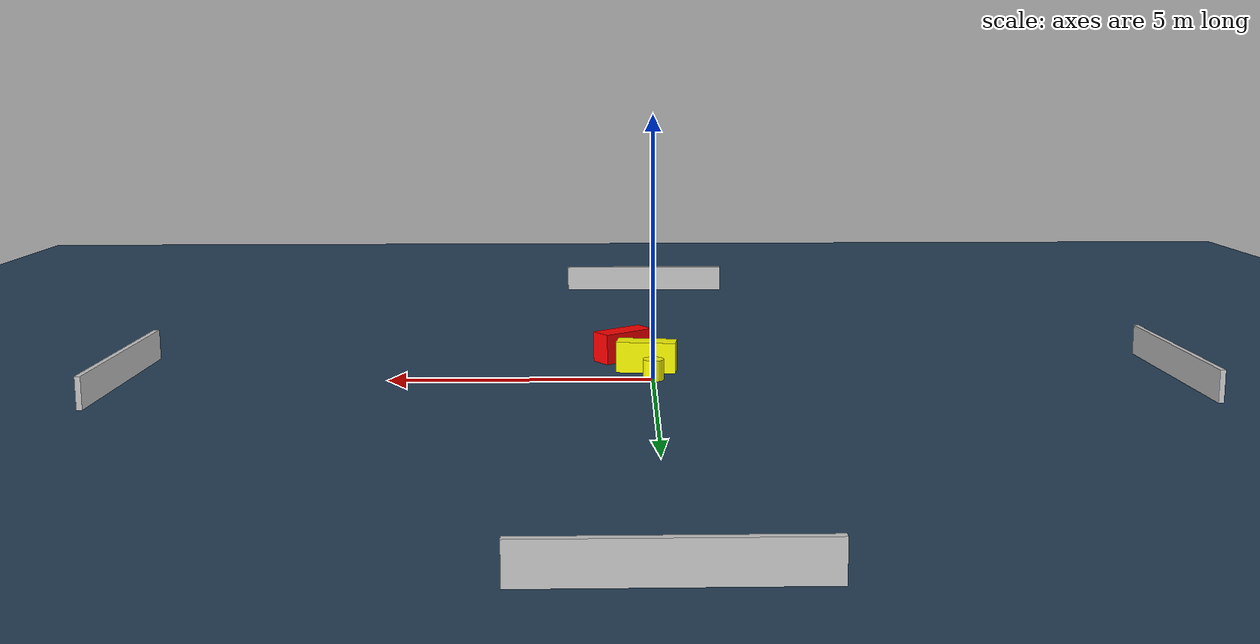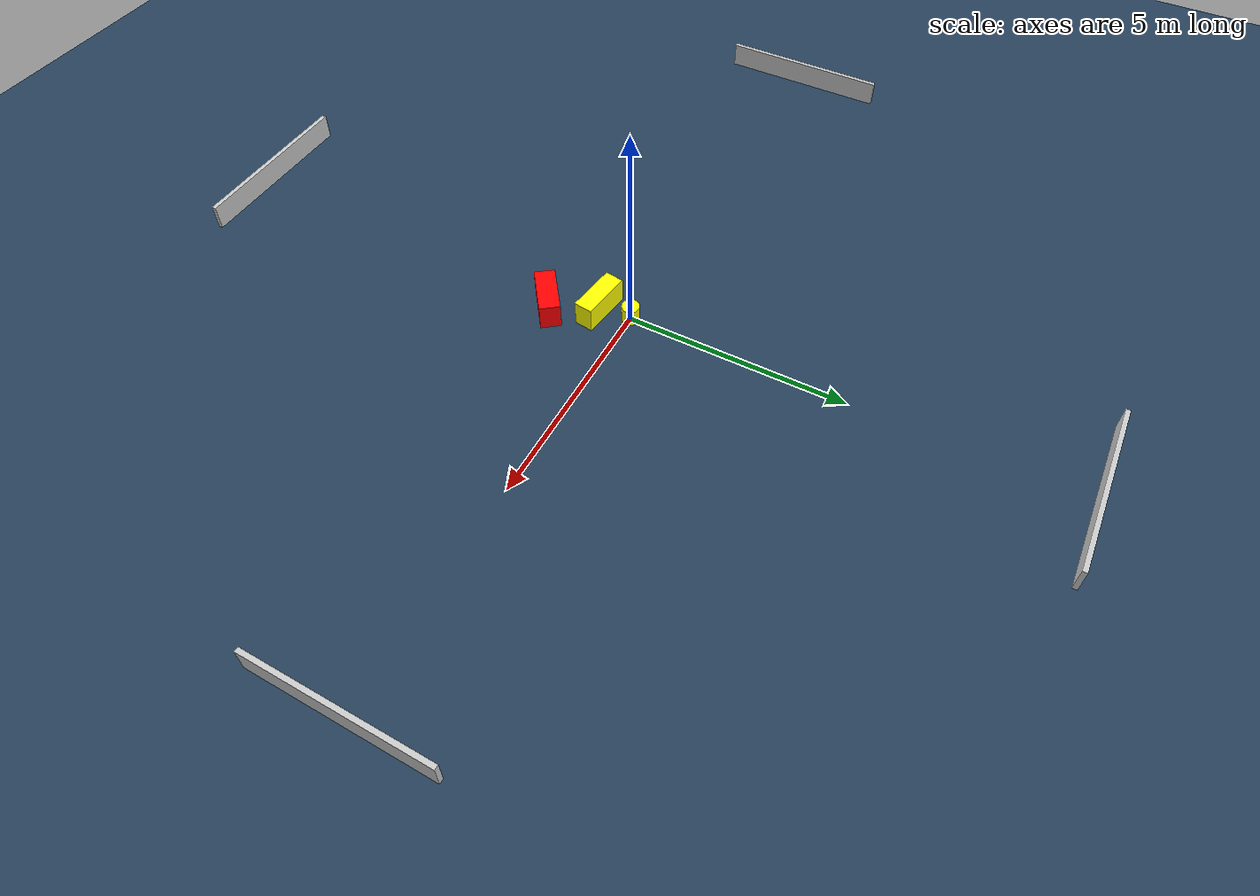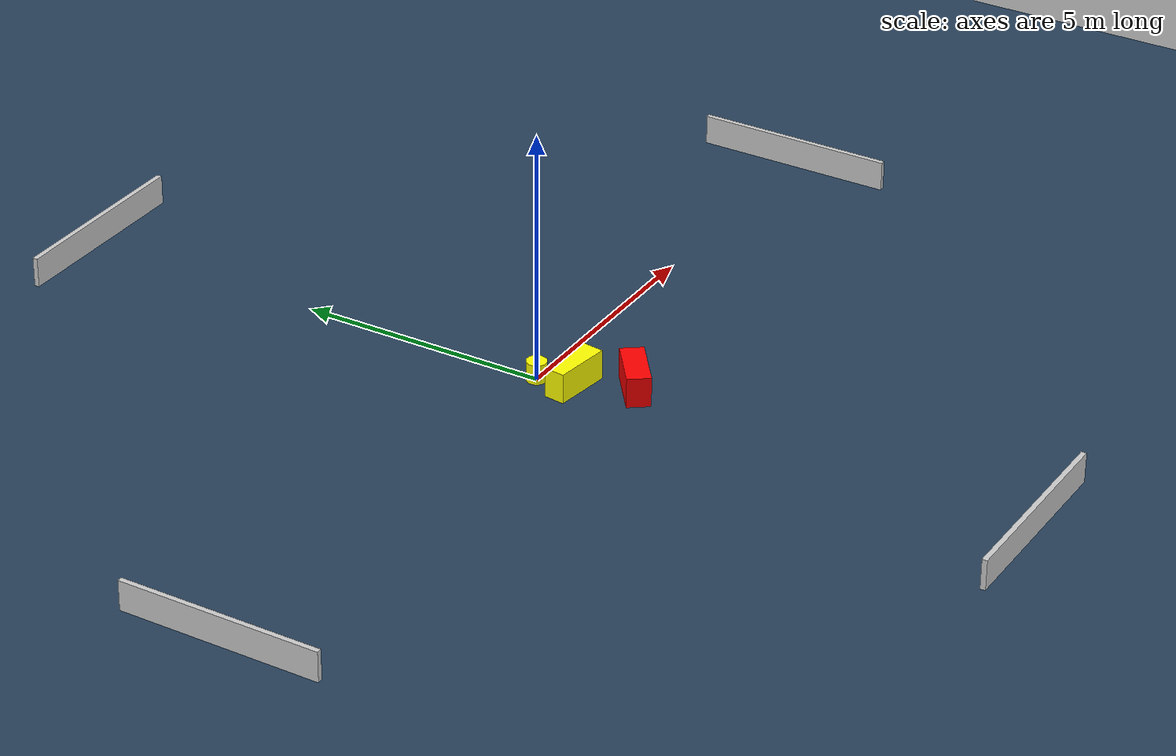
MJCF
<?xml version="1.0" ?>
<mujoco model="generated_environment">
  <option timestep="0.01" integrator="RK4" cone="elliptic"/>
  <default>
    <geom density="1"/>
  </default>
  <asset>
    <texture builtin="gradient" height="3072" name="skybox" rgb1="0.3 0.5 0.7" rgb2="0 0 0" type="skybox" width="512"/>
    <texture builtin="checker" height="300" name="groundplane" rgb1="0.2 0.3 0.4" rgb2="0.1 0.2 0.3" type="2d" width="300"/>
    <material name="groundplane" reflectance="0.2" texrepeat="5 5" texture="groundplane"/>
  </asset>
  <worldbody>
    <light dir="0 0 -1" directional="true" pos="0 0 1.5"/>
    <geom condim="3" friction="0.5 0.005 0.001" material="groundplane" name="floor" pos="0 0 0" size="0 0 0.05" type="plane"/>
    <body name="walls">
      <geom name="wall_1" condim="4" pos="-10.0 0.0 0.3" rgba="0.800000011920929 0.800000011920929 0.800000011920929 1.0" size="0.05 2.0 0.3" type="box"/>
      <geom name="wall_2" condim="4" pos="10.0 0.0 0.3" rgba="0.800000011920929 0.800000011920929 0.800000011920929 1.0" size="0.05 2.0 0.3" type="box"/>
      <geom name="wall_3" condim="4" pos="0.0 -10.0 0.3" rgba="0.800000011920929 0.800000011920929 0.800000011920929 1.0" size="2.0 0.05 0.3" type="box"/>
      <geom name="wall_4" condim="4" pos="0.0 10.0 0.3" rgba="0.800000011920929 0.800000011920929 0.800000011920929 1.0" size="2.0 0.05 0.3" type="box"/>
    </body>
    <body name="robot">
      <joint name="joint_x" type="slide" pos="0 0 0" axis="1 0 0"/>
      <joint name="joint_y" type="slide" pos="0 0 0" axis="0 1 0"/>
      <geom name="robot" type="cylinder" pos="0.0 0.0 0.2" size="0.2 0.2 0.0" mass="5.0" friction="1.0 0.005 0.0001" condim="4" rgba="1.0 1.0 0.0 1.0"/>
    </body>
    <body name="obstacle_1_movable">
      <geom name="obstacle_1_movable" condim="4" pos="0.11244185660651448 -0.7197720717603776 0.3" euler="0 0 352.3580434441287" friction="0.0 0.005 0.001" rgba="1.0 1.0 0.0 1.0" size="0.5757428042787582 0.2120930548731589 0.3" type="box" mass="0.1"/>
      <joint type="free"/>
    </body>
    <body name="obstacle_2_static">
      <geom name="obstacle_2_static" condim="4" pos="0.5732992712221026 -1.7536687650833342 0.3" euler="0 0 126.93661440822342" friction="0.0 0.005 0.001" rgba="1.0 0.0 0.0 1.0" size="0.2308049027591458 0.5633004208851555 0.3" type="box"/>
    </body>
  </worldbody>
  <actuator>
    <motor name="actuator_x" joint="joint_x" gear="1" ctrlrange="-1 1"/>
    <motor name="actuator_y" joint="joint_y" gear="1" ctrlrange="-1 1"/>
  </actuator>
</mujoco>
